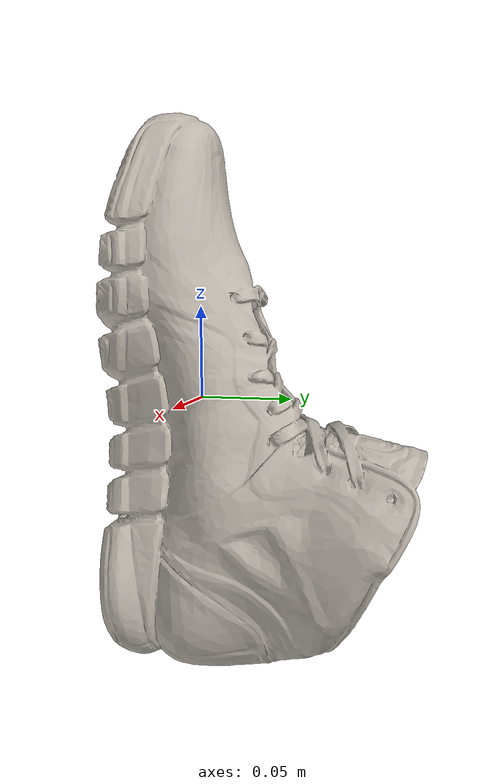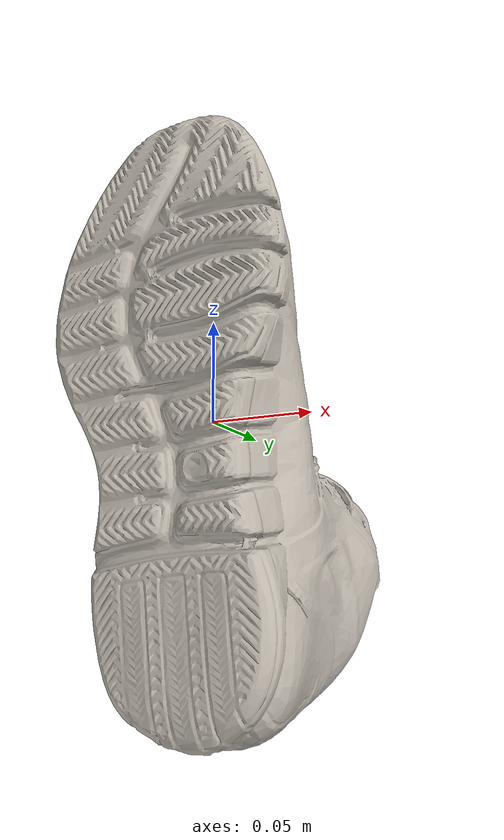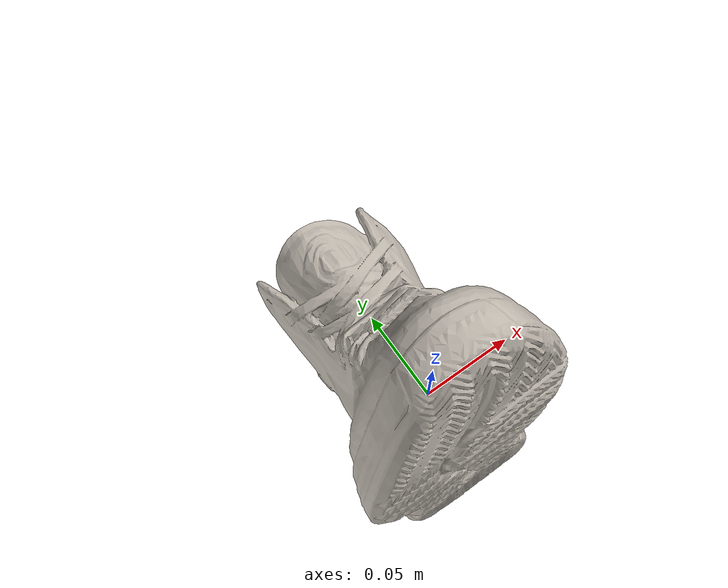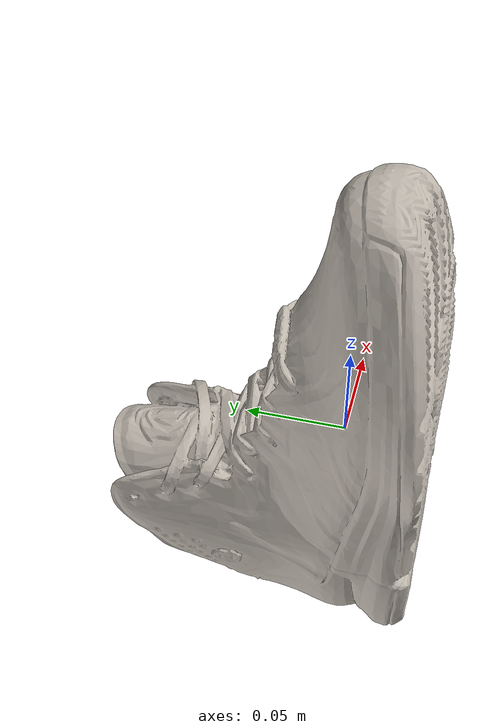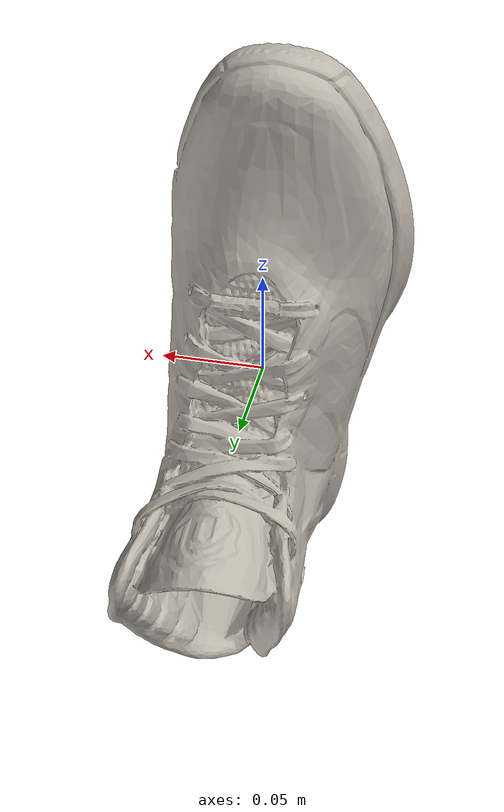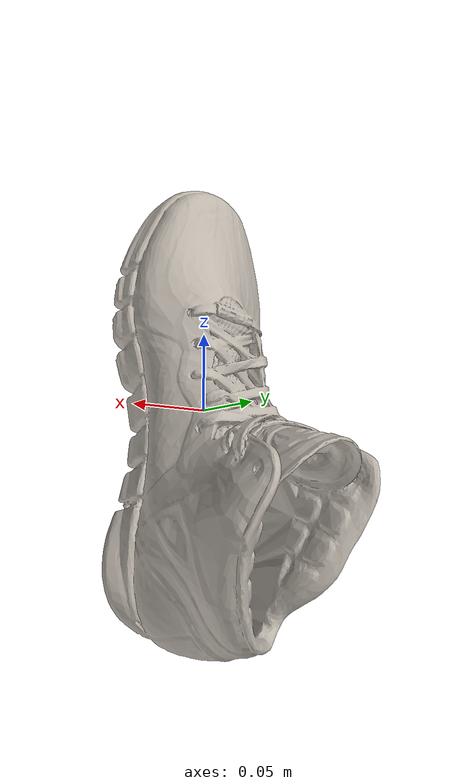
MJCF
<mujoco model="08">
  <default>
    <default class="08/visual">
      <geom group="2" type="mesh" contype="0" conaffinity="0"/>
    </default>
    <default class="08/collision">
      <geom group="3" type="mesh"/>
    </default>
  </default>
  <asset>
    <texture type="2d" name="img8" file="objects/08/img8.png"/>
    <material name="material_0.008" texture="img8" specular="0.0" shininess="0.0"/>
    <mesh file="objects/08/08.obj"/>
  </asset>
  <worldbody>
    <body name="08">
      <joint name="obj08" type="free"/>
      <geom material="material_0.008" mesh="08" class="08/visual"/>
      <geom mesh="08" class="08/collision" mass="0.5"/>
    </body>
  </worldbody>
</mujoco>
